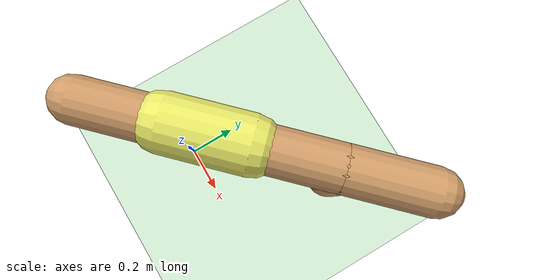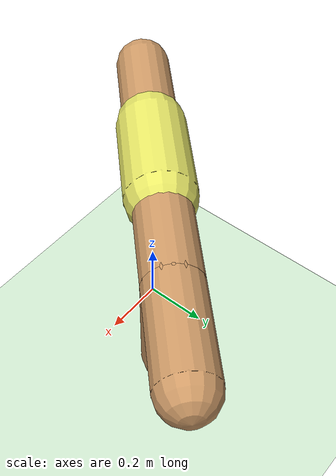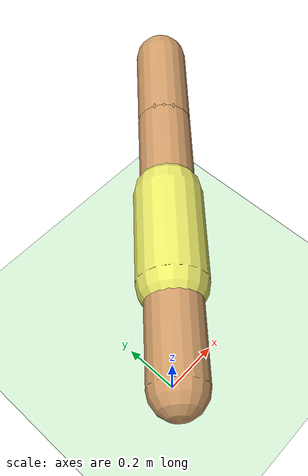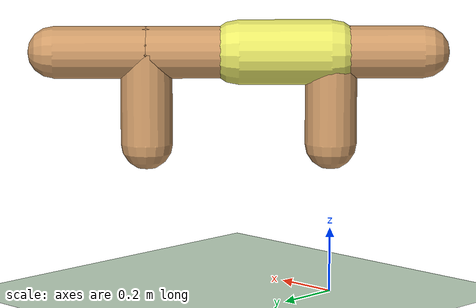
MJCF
<mujoco model="ant">
  <compiler angle="degree" coordinate="local" inertiafromgeom="true"/>
  <option integrator="RK4" timestep="0.01"/>
  <custom>
    <numeric data="0.0 0.0 0.55 1.0 0.0 0.0 0.0 0.0 1.0 0.0 -1.0 0.0 -1.0 0.0 1.0" name="init_qpos"/>
  </custom>
  <default>
    <joint armature="1" damping="1" limited="true"/>
    <geom conaffinity="0" condim="3" density="5.0" friction="1 0.5 0.5" margin="0.01" rgba="0.8 0.6 0.4 1"/>
  </default>
  <asset>
    <texture builtin="gradient" height="100" rgb1="1 1 1" rgb2="0 0 0" type="skybox" width="100"/>
    <texture builtin="flat" height="1278" mark="cross" markrgb="1 1 1" name="texgeom" random="0.01" rgb1="0.8 0.6 0.4" rgb2="0.8 0.6 0.4" type="cube" width="127"/>
    <texture builtin="checker" height="100" name="texplane" rgb1="0.38 0.48 0.38" rgb2="0.4 0.5 0.4" type="2d" width="100"/>
    <material name="MatPlane" reflectance="0.5" shininess="1" specular="1" texrepeat="60 60" texture="texplane"/>
    <material name="geom" texture="texgeom" texuniform="true"/>
  </asset>
  <worldbody>
    <light cutoff="100" diffuse="1 1 1" dir="-0 0 -1.3" directional="true" exponent="1" pos="0 0 1.3" specular=".1 .1 .1"/>
    <geom conaffinity="1" condim="3" material="MatPlane" name="floor" pos="0 0 0" rgba="0.8 0.9 0.8 1" size="40 40 40" type="plane"/>
    <body name="0" pos="0 0 0.75">
      <camera name="track" mode="trackcom" pos="0 -3 0.3" xyaxes="1 0 0 0 0 1"/>
      <geom fromto="0 0 0 0.2 0.2 0" size="0.1" type="capsule" rgba="0.9 0.9 .4 1"/>
      <joint armature="0" damping="0" limited="false" margin="0.01" name="0_joint" pos="0 0 0" type="free"/>
      <body name="1" pos="0.2 0.2 0">
        <geom fromto="0 0 0 0.2 0.2 0" size="0.08" type="capsule"/>
        <joint axis="0.707 0.707 0" name="1_joint" pos="0 0 0" limited="true" range="-100 100" type="hinge"/>
        <body name="11" pos="0.2 0.2 0">
          <geom fromto="0 0 0 0 0 -0.282843" size="0.08" type="capsule"/>
          <joint axis="0.707 0.707 0" name="11_joint" pos="0 0 0" limited="true" range="-100 100" type="hinge"/>
        </body>
        <body name="21" pos="0.2 0.2 0">
          <geom fromto="0 0 0 0.2 0.2 0" size="0.08" type="capsule"/>
          <joint axis="0.707 0.707 0" name="21_joint" pos="0 0 0" limited="true" range="-100 100" type="hinge"/>
        </body>
      </body>
      <body name="2" pos="0 0 0">
        <geom fromto="0 0 0 -0.2 -0.2 0" size="0.08" type="capsule"/>
        <joint axis="0.707 0.707 0" name="2_joint" pos="0 0 0" limited="true" range="-100 100" type="hinge"/>
      </body>
      <body name="3" pos="0 0 0">
        <geom fromto="0 0 0 0 0 -0.282843" size="0.08" type="capsule"/>
        <joint axis="0.707 0.707 0" name="3_joint" pos="0 0 0" limited="true" range="-100 100" type="hinge"/>
      </body>
    </body>
  </worldbody>
  <actuator>
    <motor ctrllimited="true" ctrlrange="-1.0 1.0" joint="1_joint" gear="150" name="1_joint"/>
    <motor ctrllimited="true" ctrlrange="-1.0 1.0" joint="2_joint" gear="150" name="2_joint"/>
    <motor ctrllimited="true" ctrlrange="-1.0 1.0" joint="3_joint" gear="150" name="3_joint"/>
    <motor ctrllimited="true" ctrlrange="-1.0 1.0" joint="11_joint" gear="150" name="11_joint"/>
    <motor ctrllimited="true" ctrlrange="-1.0 1.0" joint="21_joint" gear="150" name="21_joint"/>
  </actuator>
</mujoco>
